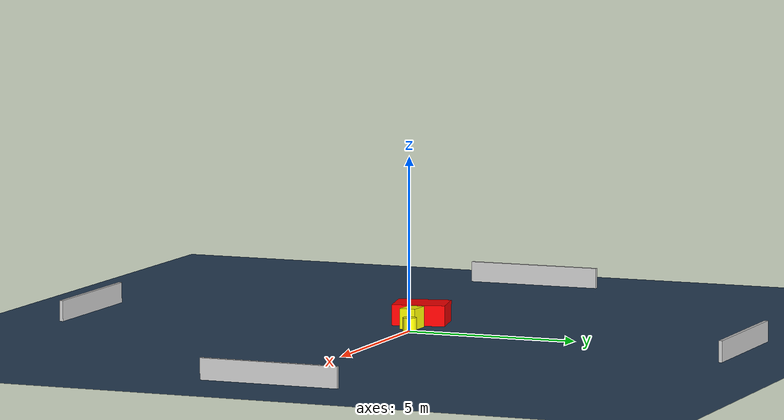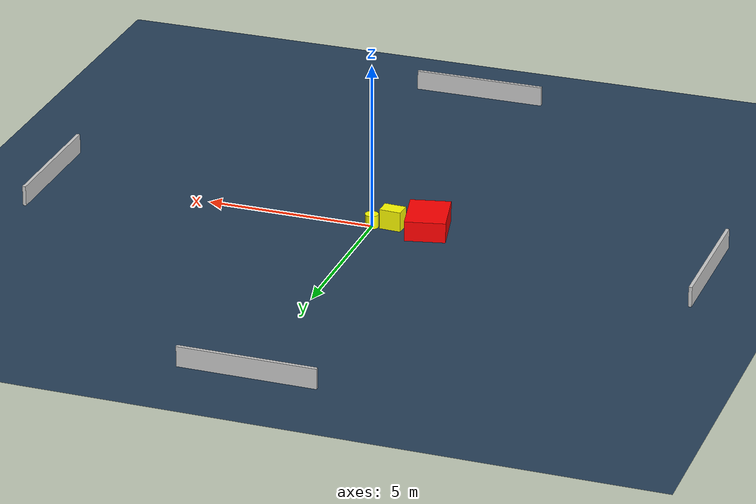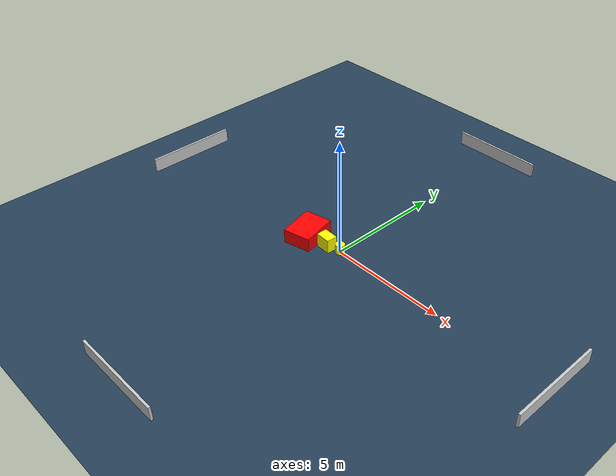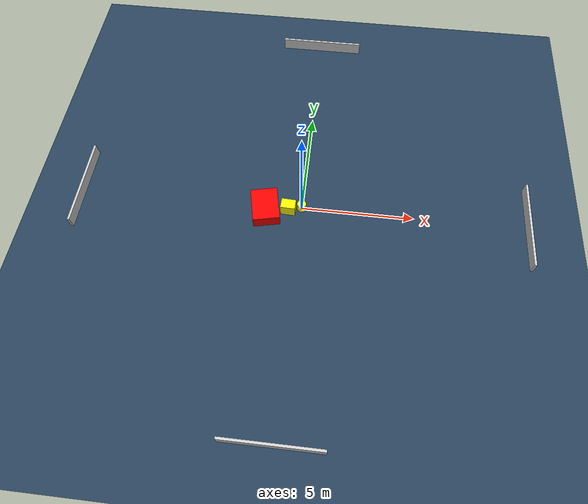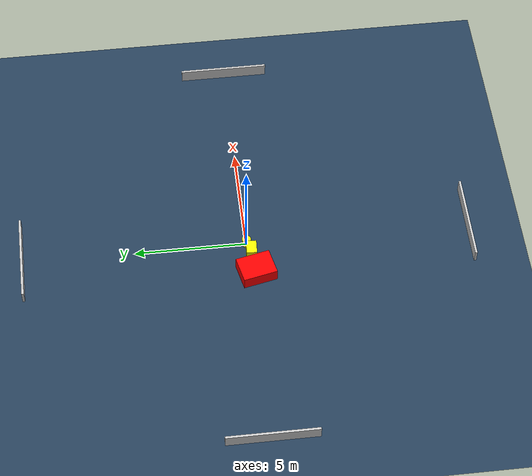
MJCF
<?xml version="1.0" ?>
<mujoco model="generated_environment">
  <option timestep="0.01" integrator="RK4" cone="elliptic"/>
  <default>
    <geom density="1"/>
  </default>
  <asset>
    <texture builtin="gradient" height="3072" name="skybox" rgb1="0.3 0.5 0.7" rgb2="0 0 0" type="skybox" width="512"/>
    <texture builtin="checker" height="300" name="groundplane" rgb1="0.2 0.3 0.4" rgb2="0.1 0.2 0.3" type="2d" width="300"/>
    <material name="groundplane" reflectance="0.2" texrepeat="5 5" texture="groundplane"/>
  </asset>
  <worldbody>
    <light dir="0 0 -1" directional="true" pos="0 0 1.5"/>
    <geom condim="3" friction="0.5 0.005 0.001" material="groundplane" name="floor" pos="0 0 0" size="0 0 0.05" type="plane"/>
    <body name="walls">
      <geom name="wall_1" condim="4" pos="-10.0 0.0 0.3" rgba="0.800000011920929 0.800000011920929 0.800000011920929 1.0" size="0.05 2.0 0.3" type="box"/>
      <geom name="wall_2" condim="4" pos="10.0 0.0 0.3" rgba="0.800000011920929 0.800000011920929 0.800000011920929 1.0" size="0.05 2.0 0.3" type="box"/>
      <geom name="wall_3" condim="4" pos="0.0 -10.0 0.3" rgba="0.800000011920929 0.800000011920929 0.800000011920929 1.0" size="2.0 0.05 0.3" type="box"/>
      <geom name="wall_4" condim="4" pos="0.0 10.0 0.3" rgba="0.800000011920929 0.800000011920929 0.800000011920929 1.0" size="2.0 0.05 0.3" type="box"/>
    </body>
    <body name="robot">
      <joint name="joint_x" type="slide" pos="0 0 0" axis="1 0 0"/>
      <joint name="joint_y" type="slide" pos="0 0 0" axis="0 1 0"/>
      <geom name="robot" type="cylinder" pos="0.0 0.0 0.2" size="0.2 0.2 0.0" mass="5.0" friction="1.0 0.005 0.0001" condim="4" rgba="1.0 1.0 0.0 1.0"/>
    </body>
    <body name="obstacle_1_movable">
      <geom name="obstacle_1_movable" condim="4" pos="-0.5810810504454229 -0.16150190792062633 0.3" euler="0 0 177.26440179941204" friction="0.0 0.005 0.001" rgba="1.0 1.0 0.0 1.0" size="0.3242098874277889 0.23071403576226887 0.3" type="box" mass="0.1"/>
      <joint type="free"/>
    </body>
    <body name="obstacle_2_static">
      <geom name="obstacle_2_static" condim="4" pos="-1.6044814394098459 -0.27202643432021467 0.3" euler="0 0 12.391687206610339" friction="0.0 0.005 0.001" rgba="1.0 0.0 0.0 1.0" size="0.5953215137551693 0.768425736390385 0.3" type="box"/>
    </body>
  </worldbody>
  <actuator>
    <motor name="actuator_x" joint="joint_x" gear="1" ctrlrange="-1 1"/>
    <motor name="actuator_y" joint="joint_y" gear="1" ctrlrange="-1 1"/>
  </actuator>
</mujoco>
